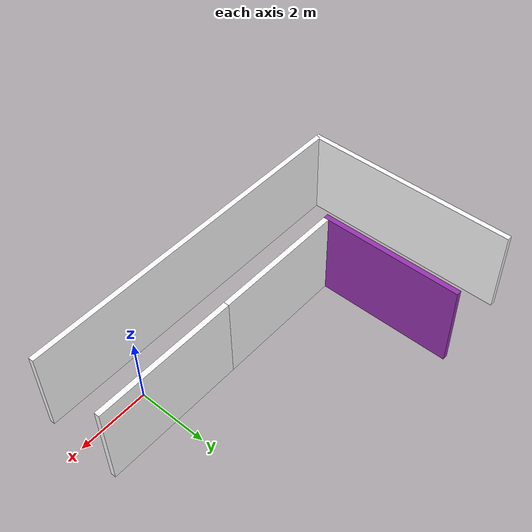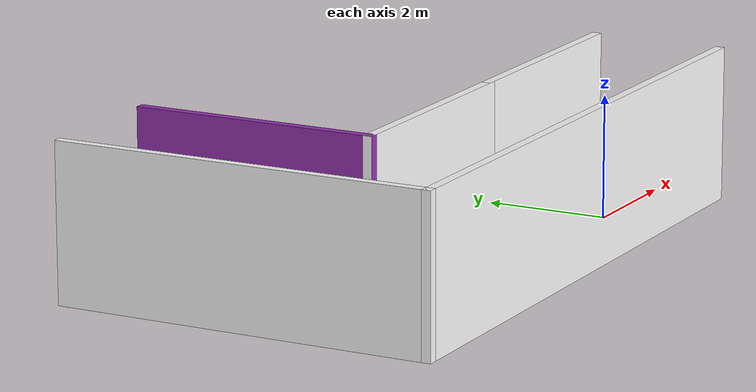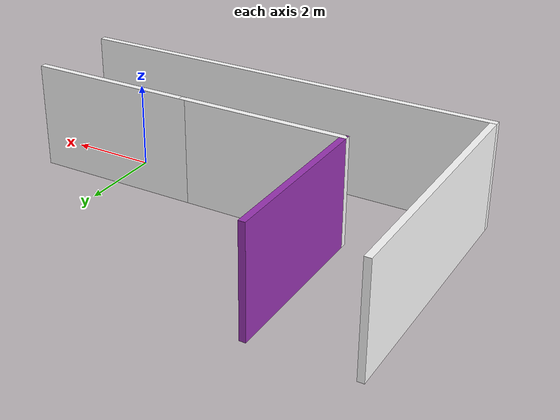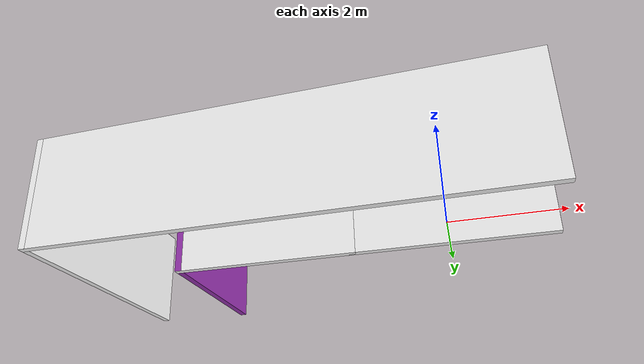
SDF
<?xml version='1.0'?>
<sdf version='1.6'>
  <model name='turtlebot_model_1'>
    <pose frame=''>-3.09013 1.91847 0 0 -0 0</pose>
    <link name='Wall_1'>
      <collision name='Wall_1_Collision'>
        <geometry>
          <box>
            <size>10.15 0.15 2.5</size>
          </box>
        </geometry>
        <pose frame=''>0 0 1.25 0 -0 0</pose>
      </collision>
      <visual name='Wall_1_Visual'>
        <pose frame=''>0 0 1.25 0 -0 0</pose>
        <geometry>
          <box>
            <size>10.15 0.15 2.5</size>
          </box>
        </geometry>
        <material>
          <script>
	    <uri>model://turtlebot_model_1/materials/scripts</uri>
            <uri>model://turtlebot_model_1/materials/textures</uri>
	    <name>whiteTexture/Image</name>
          </script>
          <ambient>1 1 1 1</ambient>
        </material>
        <meta>
          <layer>0</layer>
        </meta>
      </visual>
      <pose frame=''>-0.015955 -3.01847 0 0 -0 3.14159</pose>
    </link>
    <link name='Wall_10'>
      <collision name='Wall_10_Collision'>
        <geometry>
          <box>
            <size>6.15 0.15 2.5</size>
          </box>
        </geometry>
        <pose frame=''>0 0 1.25 0 -0 0</pose>
      </collision>
      <visual name='Wall_10_Visual'>
        <pose frame=''>0 0 1.25 0 -0 0</pose>
        <geometry>
          <box>
            <size>6.15 0.15 2.5</size>
          </box>
        </geometry>
        <material>
          <script>
            <uri>model://turtlebot_model_1/materials/scripts</uri>
            <uri>model://turtlebot_model_1/materials/textures</uri>
	    <name>doorTexture/Image</name>
          </script>
          <ambient>1 1 1 1</ambient>
        </material>
        <meta>
          <layer>0</layer>
        </meta>
      </visual>
      <pose frame=''>-5.01595 -0.01847 0 0 -0 1.5708</pose>
    </link>
    <link name='Wall_12'>
      <collision name='Wall_12_Collision'>
        <geometry>
          <box>
            <size>4 0.15 2.5</size>
          </box>
        </geometry>
        <pose frame=''>0 0 1.25 0 -0 0</pose>
      </collision>
      <visual name='Wall_12_Visual'>
        <pose frame=''>0 0 1.25 0 -0 0</pose>
        <geometry>
          <box>
            <size>4 0.15 2.5</size>
          </box>
        </geometry>
        <material>
          <script>
            <uri>file://media/materials/scripts/gazebo.material</uri>
            <name>Gazebo/Purple</name>
          </script>
          <ambient>1 1 1 1</ambient>
        </material>
        <meta>
          <layer>0</layer>
        </meta>
      </visual>
      <pose frame=''>-2.68404 1.09347 0 0 -0 1.5708</pose>
    </link>
    <link name='Wall_4'>
      <collision name='Wall_4_Collision'>
        <geometry>
          <box>
            <size>4 0.15 2.5</size>
          </box>
        </geometry>
        <pose frame=''>0 0 1.25 0 -0 0</pose>
      </collision>
      <visual name='Wall_4_Visual'>
        <pose frame=''>0 0 1.25 0 -0 0</pose>
        <geometry>
          <box>
            <size>4 0.15 2.5</size>
          </box>
        </geometry>
        <material>
          <script>
	    <uri>model://turtlebot_model/materials/scripts</uri>
            <uri>model://turtlebot_model/materials/textures</uri>
	    <name>wallTexture/Image</name>
          </script>
          <ambient>1 1 1 1</ambient>
        </material>
        <meta>
          <layer>0</layer>
        </meta>
      </visual>
      <pose frame=''>3.09096 -0.83153 0 0 -0 3.14159</pose>
    </link>
    <link name='Wall_8'>
      <collision name='Wall_8_Collision'>
        <geometry>
          <box>
            <size>4 0.15 2.5</size>
          </box>
        </geometry>
        <pose frame=''>0 0 1.25 0 -0 0</pose>
      </collision>
      <visual name='Wall_8_Visual'>
        <pose frame=''>0 0 1.25 0 -0 0</pose>
        <geometry>
          <box>
            <size>4 0.15 2.5</size>
          </box>
        </geometry>
        <material>
          <script>
	    <uri>model://turtlebot_model/materials/scripts</uri>
            <uri>model://turtlebot_model/materials/textures</uri>
	    <name>wallTexture/Image</name>
          </script>
          <ambient>1 1 1 1</ambient>
        </material>
        <meta>
          <layer>0</layer>
        </meta>
      </visual>
      <pose frame=''>-0.759044 -0.83153 0 0 -0 3.14159</pose>
    </link>
    <static>1</static>
  </model>
</sdf>
